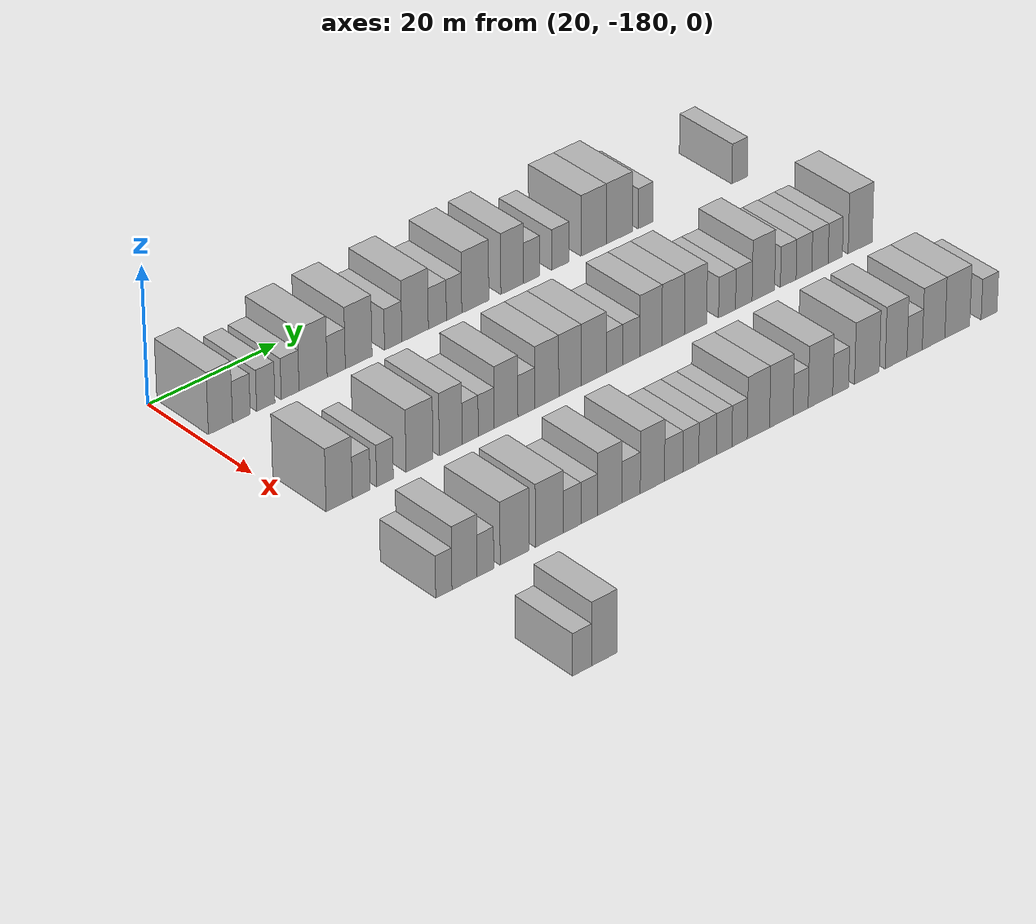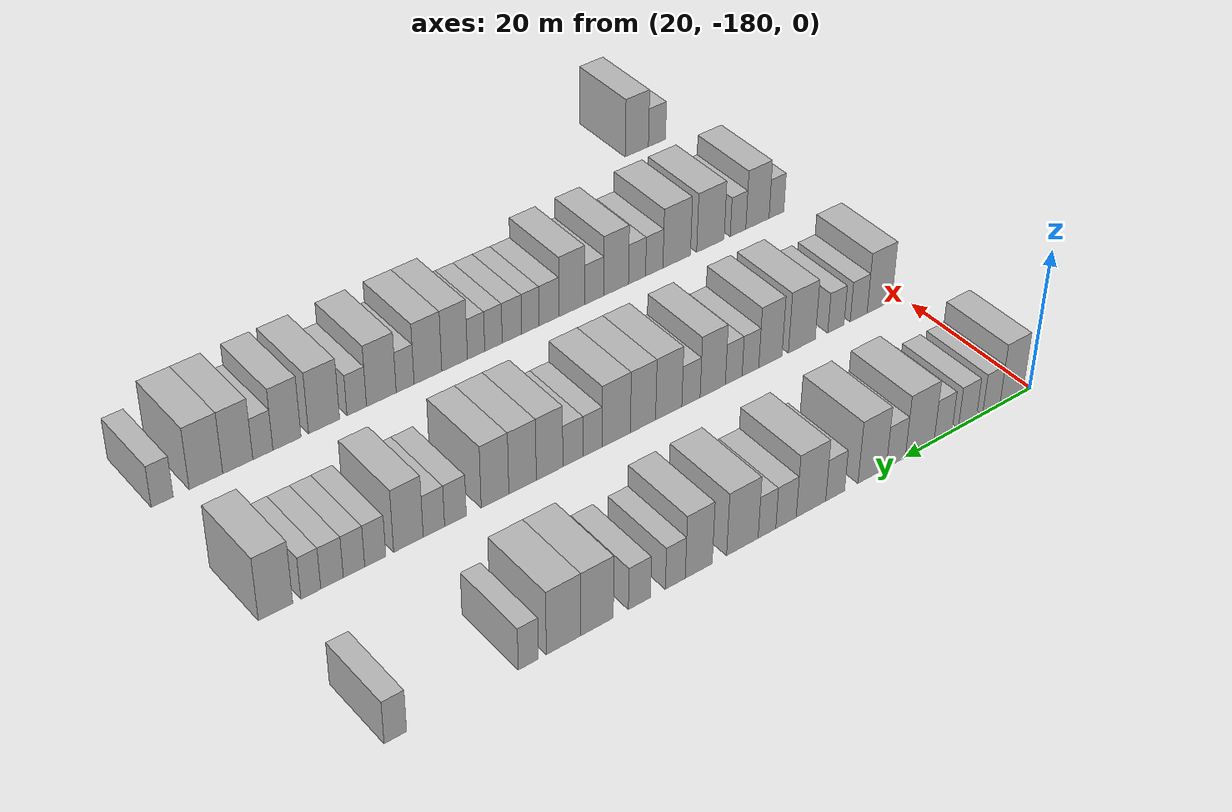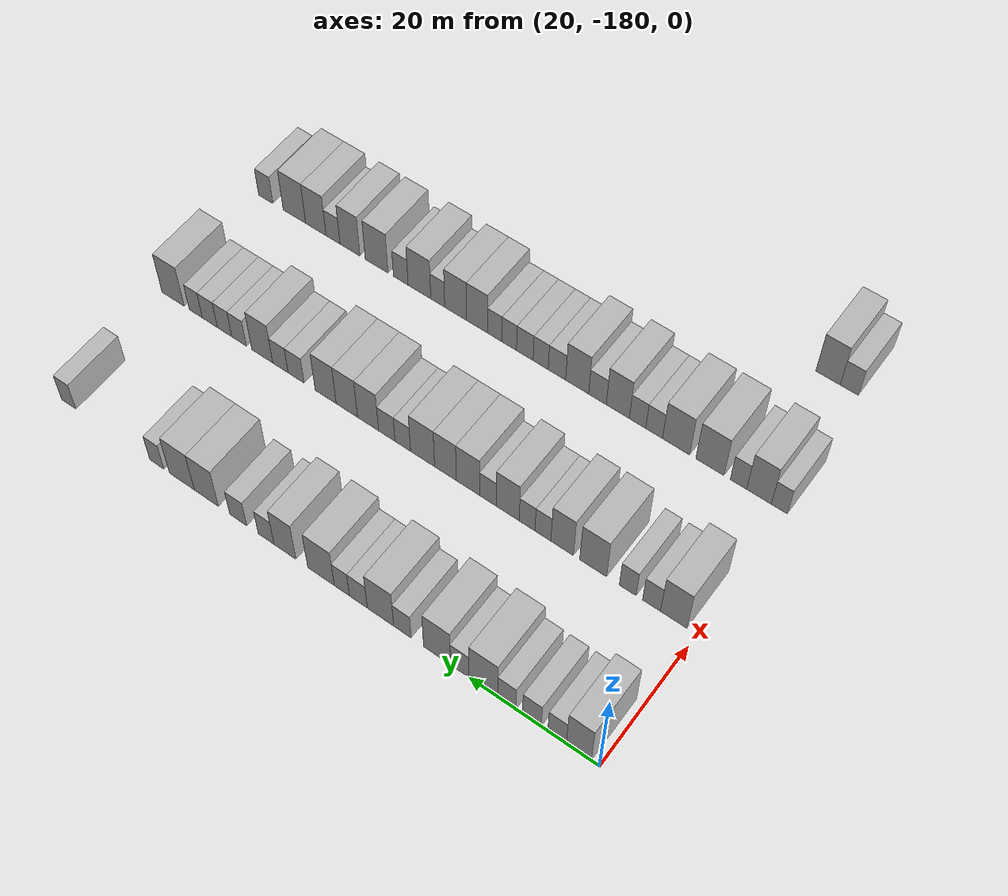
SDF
<sdf version="1.6">
 <world name="default">
  <model name="building_49">
   <static>1</static>
   <pose>25.0000 -176.8252 0 0.000000 0.000000 0.000000</pose>
   <link name="link">
    <pose>0 0 4.50 0 0 0</pose>
    <collision name="collision"><geometry><box><size>10.0000 3.7532 9.0000</size></box></geometry></collision>
    <visual name="visual">
     <cast_shadows>0</cast_shadows>
     <geometry><box><size>10.0000 3.7532 9.0000</size></box></geometry>
     <material>
      <script>
       <uri>model://HANNAS_wall/materials/scripts</uri>
       <uri>model://HANNAS_wall/materials/textures</uri>
       <name>vrc/HANNAS_wall</name>
      </script>
     </material>
    </visual>
   </link>
  </model>
  <model name="building_50">
   <static>1</static>
   <pose>25.0000 -173.5643 0 0.000000 0.000000 0.000000</pose>
   <link name="link">
    <pose>0 0 3.00 0 0 0</pose>
    <collision name="collision"><geometry><box><size>10.0000 2.7686 6.0000</size></box></geometry></collision>
    <visual name="visual">
     <cast_shadows>0</cast_shadows>
     <geometry><box><size>10.0000 2.7686 6.0000</size></box></geometry>
     <material>
      <script>
       <uri>model://HANNAS_wall/materials/scripts</uri>
       <uri>model://HANNAS_wall/materials/textures</uri>
       <name>vrc/HANNAS_wall</name>
      </script>
     </material>
    </visual>
   </link>
  </model>
  <model name="building_51">
   <static>1</static>
   <pose>25.0000 -169.7473 0 0.000000 0.000000 0.000000</pose>
   <link name="link">
    <pose>0 0 3.00 0 0 0</pose>
    <collision name="collision"><geometry><box><size>10.0000 2.8655 6.0000</size></box></geometry></collision>
    <visual name="visual">
     <cast_shadows>0</cast_shadows>
     <geometry><box><size>10.0000 2.8655 6.0000</size></box></geometry>
     <material>
      <script>
       <uri>model://HANNAS_wall/materials/scripts</uri>
       <uri>model://HANNAS_wall/materials/textures</uri>
       <name>vrc/HANNAS_wall</name>
      </script>
     </material>
    </visual>
   </link>
  </model>
  <model name="building_52">
   <static>1</static>
   <pose>25.0000 -165.9094 0 0.000000 0.000000 0.000000</pose>
   <link name="link">
    <pose>0 0 3.00 0 0 0</pose>
    <collision name="collision"><geometry><box><size>10.0000 2.8103 6.0000</size></box></geometry></collision>
    <visual name="visual">
     <cast_shadows>0</cast_shadows>
     <geometry><box><size>10.0000 2.8103 6.0000</size></box></geometry>
     <material>
      <script>
       <uri>model://HANNAS_wall/materials/scripts</uri>
       <uri>model://HANNAS_wall/materials/textures</uri>
       <name>vrc/HANNAS_wall</name>
      </script>
     </material>
    </visual>
   </link>
  </model>
  <model name="building_53">
   <static>1</static>
   <pose>25.0000 -162.2745 0 0.000000 0.000000 0.000000</pose>
   <link name="link">
    <pose>0 0 4.50 0 0 0</pose>
    <collision name="collision"><geometry><box><size>10.0000 4.4594 9.0000</size></box></geometry></collision>
    <visual name="visual">
     <cast_shadows>0</cast_shadows>
     <geometry><box><size>10.0000 4.4594 9.0000</size></box></geometry>
     <material>
      <script>
       <uri>model://HANNAS_wall/materials/scripts</uri>
       <uri>model://HANNAS_wall/materials/textures</uri>
       <name>vrc/HANNAS_wall</name>
      </script>
     </material>
    </visual>
   </link>
  </model>
  <model name="building_54">
   <static>1</static>
   <pose>25.0000 -158.5952 0 0.000000 0.000000 0.000000</pose>
   <link name="link">
    <pose>0 0 3.00 0 0 0</pose>
    <collision name="collision"><geometry><box><size>10.0000 2.8992 6.0000</size></box></geometry></collision>
    <visual name="visual">
     <cast_shadows>0</cast_shadows>
     <geometry><box><size>10.0000 2.8992 6.0000</size></box></geometry>
     <material>
      <script>
       <uri>model://HANNAS_wall/materials/scripts</uri>
       <uri>model://HANNAS_wall/materials/textures</uri>
       <name>vrc/HANNAS_wall</name>
      </script>
     </material>
    </visual>
   </link>
  </model>
  <model name="building_55">
   <static>1</static>
   <pose>25.0000 -155.0011 0 0.000000 0.000000 0.000000</pose>
   <link name="link">
    <pose>0 0 4.50 0 0 0</pose>
    <collision name="collision"><geometry><box><size>10.0000 4.2891 9.0000</size></box></geometry></collision>
    <visual name="visual">
     <cast_shadows>0</cast_shadows>
     <geometry><box><size>10.0000 4.2891 9.0000</size></box></geometry>
     <material>
      <script>
       <uri>model://HANNAS_wall/materials/scripts</uri>
       <uri>model://HANNAS_wall/materials/textures</uri>
       <name>vrc/HANNAS_wall</name>
      </script>
     </material>
    </visual>
   </link>
  </model>
  <model name="building_56">
   <static>1</static>
   <pose>25.0000 -149.4536 0 0.000000 0.000000 0.000000</pose>
   <link name="link">
    <pose>0 0 3.00 0 0 0</pose>
    <collision name="collision"><geometry><box><size>10.0000 2.8059 6.0000</size></box></geometry></collision>
    <visual name="visual">
     <cast_shadows>0</cast_shadows>
     <geometry><box><size>10.0000 2.8059 6.0000</size></box></geometry>
     <material>
      <script>
       <uri>model://HANNAS_wall/materials/scripts</uri>
       <uri>model://HANNAS_wall/materials/textures</uri>
       <name>vrc/HANNAS_wall</name>
      </script>
     </material>
    </visual>
   </link>
  </model>
  <model name="building_57">
   <static>1</static>
   <pose>25.0000 -145.8993 0 0.000000 0.000000 0.000000</pose>
   <link name="link">
    <pose>0 0 4.50 0 0 0</pose>
    <collision name="collision"><geometry><box><size>10.0000 4.3028 9.0000</size></box></geometry></collision>
    <visual name="visual">
     <cast_shadows>0</cast_shadows>
     <geometry><box><size>10.0000 4.3028 9.0000</size></box></geometry>
     <material>
      <script>
       <uri>model://HANNAS_wall/materials/scripts</uri>
       <uri>model://HANNAS_wall/materials/textures</uri>
       <name>vrc/HANNAS_wall</name>
      </script>
     </material>
    </visual>
   </link>
  </model>
  <model name="building_58">
   <static>1</static>
   <pose>25.0000 -142.2733 0 0.000000 0.000000 0.000000</pose>
   <link name="link">
    <pose>0 0 3.00 0 0 0</pose>
    <collision name="collision"><geometry><box><size>10.0000 2.9493 6.0000</size></box></geometry></collision>
    <visual name="visual">
     <cast_shadows>0</cast_shadows>
     <geometry><box><size>10.0000 2.9493 6.0000</size></box></geometry>
     <material>
      <script>
       <uri>model://HANNAS_wall/materials/scripts</uri>
       <uri>model://HANNAS_wall/materials/textures</uri>
       <name>vrc/HANNAS_wall</name>
      </script>
     </material>
    </visual>
   </link>
  </model>
  <model name="building_59">
   <static>1</static>
   <pose>25.0000 -139.5388 0 0.000000 0.000000 0.000000</pose>
   <link name="link">
    <pose>0 0 3.00 0 0 0</pose>
    <collision name="collision"><geometry><box><size>10.0000 2.5197 6.0000</size></box></geometry></collision>
    <visual name="visual">
     <cast_shadows>0</cast_shadows>
     <geometry><box><size>10.0000 2.5197 6.0000</size></box></geometry>
     <material>
      <script>
       <uri>model://HANNAS_wall/materials/scripts</uri>
       <uri>model://HANNAS_wall/materials/textures</uri>
       <name>vrc/HANNAS_wall</name>
      </script>
     </material>
    </visual>
   </link>
  </model>
  <model name="building_60">
   <static>1</static>
   <pose>25.0000 -136.0544 0 0.000000 0.000000 0.000000</pose>
   <link name="link">
    <pose>0 0 4.50 0 0 0</pose>
    <collision name="collision"><geometry><box><size>10.0000 4.4490 9.0000</size></box></geometry></collision>
    <visual name="visual">
     <cast_shadows>0</cast_shadows>
     <geometry><box><size>10.0000 4.4490 9.0000</size></box></geometry>
     <material>
      <script>
       <uri>model://HANNAS_wall/materials/scripts</uri>
       <uri>model://HANNAS_wall/materials/textures</uri>
       <name>vrc/HANNAS_wall</name>
      </script>
     </material>
    </visual>
   </link>
  </model>
  <model name="building_61">
   <static>1</static>
   <pose>25.0000 -129.9648 0 0.000000 0.000000 0.000000</pose>
   <link name="link">
    <pose>0 0 4.50 0 0 0</pose>
    <collision name="collision"><geometry><box><size>10.0000 3.7301 9.0000</size></box></geometry></collision>
    <visual name="visual">
     <cast_shadows>0</cast_shadows>
     <geometry><box><size>10.0000 3.7301 9.0000</size></box></geometry>
     <material>
      <script>
       <uri>model://HANNAS_wall/materials/scripts</uri>
       <uri>model://HANNAS_wall/materials/textures</uri>
       <name>vrc/HANNAS_wall</name>
      </script>
     </material>
    </visual>
   </link>
  </model>
  <model name="building_62">
   <static>1</static>
   <pose>25.0000 -126.7438 0 0.000000 0.000000 0.000000</pose>
   <link name="link">
    <pose>0 0 3.00 0 0 0</pose>
    <collision name="collision"><geometry><box><size>10.0000 2.7120 6.0000</size></box></geometry></collision>
    <visual name="visual">
     <cast_shadows>0</cast_shadows>
     <geometry><box><size>10.0000 2.7120 6.0000</size></box></geometry>
     <material>
      <script>
       <uri>model://HANNAS_wall/materials/scripts</uri>
       <uri>model://HANNAS_wall/materials/textures</uri>
       <name>vrc/HANNAS_wall</name>
      </script>
     </material>
    </visual>
   </link>
  </model>
  <model name="building_63">
   <static>1</static>
   <pose>25.0000 -121.9091 0 0.000000 0.000000 0.000000</pose>
   <link name="link">
    <pose>0 0 3.00 0 0 0</pose>
    <collision name="collision"><geometry><box><size>10.0000 2.9574 6.0000</size></box></geometry></collision>
    <visual name="visual">
     <cast_shadows>0</cast_shadows>
     <geometry><box><size>10.0000 2.9574 6.0000</size></box></geometry>
     <material>
      <script>
       <uri>model://HANNAS_wall/materials/scripts</uri>
       <uri>model://HANNAS_wall/materials/textures</uri>
       <name>vrc/HANNAS_wall</name>
      </script>
     </material>
    </visual>
   </link>
  </model>
  <model name="building_64">
   <static>1</static>
   <pose>25.0000 -116.3051 0 0.000000 0.000000 0.000000</pose>
   <link name="link">
    <pose>0 0 4.50 0 0 0</pose>
    <collision name="collision"><geometry><box><size>10.0000 4.2506 9.0000</size></box></geometry></collision>
    <visual name="visual">
     <cast_shadows>0</cast_shadows>
     <geometry><box><size>10.0000 4.2506 9.0000</size></box></geometry>
     <material>
      <script>
       <uri>model://HANNAS_wall/materials/scripts</uri>
       <uri>model://HANNAS_wall/materials/textures</uri>
       <name>vrc/HANNAS_wall</name>
      </script>
     </material>
    </visual>
   </link>
  </model>
  <model name="building_65">
   <static>1</static>
   <pose>25.0000 -111.9538 0 0.000000 0.000000 0.000000</pose>
   <link name="link">
    <pose>0 0 4.50 0 0 0</pose>
    <collision name="collision"><geometry><box><size>10.0000 4.4520 9.0000</size></box></geometry></collision>
    <visual name="visual">
     <cast_shadows>0</cast_shadows>
     <geometry><box><size>10.0000 4.4520 9.0000</size></box></geometry>
     <material>
      <script>
       <uri>model://HANNAS_wall/materials/scripts</uri>
       <uri>model://HANNAS_wall/materials/textures</uri>
       <name>vrc/HANNAS_wall</name>
      </script>
     </material>
    </visual>
   </link>
  </model>
  <model name="building_66">
   <static>1</static>
   <pose>25.0000 -107.4496 0 0.000000 0.000000 0.000000</pose>
   <link name="link">
    <pose>0 0 3.00 0 0 0</pose>
    <collision name="collision"><geometry><box><size>10.0000 2.5565 6.0000</size></box></geometry></collision>
    <visual name="visual">
     <cast_shadows>0</cast_shadows>
     <geometry><box><size>10.0000 2.5565 6.0000</size></box></geometry>
     <material>
      <script>
       <uri>model://HANNAS_wall/materials/scripts</uri>
       <uri>model://HANNAS_wall/materials/textures</uri>
       <name>vrc/HANNAS_wall</name>
      </script>
     </material>
    </visual>
   </link>
  </model>
  <model name="building_67">
   <static>1</static>
   <pose>25.0000 -91.1495 0 0.000000 0.000000 0.000000</pose>
   <link name="link">
    <pose>0 0 3.00 0 0 0</pose>
    <collision name="collision"><geometry><box><size>10.0000 2.6812 6.0000</size></box></geometry></collision>
    <visual name="visual">
     <cast_shadows>0</cast_shadows>
     <geometry><box><size>10.0000 2.6812 6.0000</size></box></geometry>
     <material>
      <script>
       <uri>model://HANNAS_wall/materials/scripts</uri>
       <uri>model://HANNAS_wall/materials/textures</uri>
       <name>vrc/HANNAS_wall</name>
      </script>
     </material>
    </visual>
   </link>
  </model>
  <model name="building_228">
   <static>1</static>
   <pose>47.0000 -176.4587 0 0.000000 0.000000 0.000000</pose>
   <link name="link">
    <pose>0 0 4.50 0 0 0</pose>
    <collision name="collision"><geometry><box><size>10.0000 4.0705 9.0000</size></box></geometry></collision>
    <visual name="visual">
     <cast_shadows>0</cast_shadows>
     <geometry><box><size>10.0000 4.0705 9.0000</size></box></geometry>
     <material>
      <script>
       <uri>model://HANNAS_wall/materials/scripts</uri>
       <uri>model://HANNAS_wall/materials/textures</uri>
       <name>vrc/HANNAS_wall</name>
      </script>
     </material>
    </visual>
   </link>
  </model>
  <model name="building_229">
   <static>1</static>
   <pose>47.0000 -173.0446 0 0.000000 0.000000 0.000000</pose>
   <link name="link">
    <pose>0 0 3.00 0 0 0</pose>
    <collision name="collision"><geometry><box><size>10.0000 2.7576 6.0000</size></box></geometry></collision>
    <visual name="visual">
     <cast_shadows>0</cast_shadows>
     <geometry><box><size>10.0000 2.7576 6.0000</size></box></geometry>
     <material>
      <script>
       <uri>model://HANNAS_wall/materials/scripts</uri>
       <uri>model://HANNAS_wall/materials/textures</uri>
       <name>vrc/HANNAS_wall</name>
      </script>
     </material>
    </visual>
   </link>
  </model>
  <model name="building_230">
   <static>1</static>
   <pose>47.0000 -169.3561 0 0.000000 0.000000 0.000000</pose>
   <link name="link">
    <pose>0 0 3.00 0 0 0</pose>
    <collision name="collision"><geometry><box><size>10.0000 2.6195 6.0000</size></box></geometry></collision>
    <visual name="visual">
     <cast_shadows>0</cast_shadows>
     <geometry><box><size>10.0000 2.6195 6.0000</size></box></geometry>
     <material>
      <script>
       <uri>model://HANNAS_wall/materials/scripts</uri>
       <uri>model://HANNAS_wall/materials/textures</uri>
       <name>vrc/HANNAS_wall</name>
      </script>
     </material>
    </visual>
   </link>
  </model>
  <model name="building_231">
   <static>1</static>
   <pose>47.0000 -163.9204 0 0.000000 0.000000 0.000000</pose>
   <link name="link">
    <pose>0 0 4.50 0 0 0</pose>
    <collision name="collision"><geometry><box><size>10.0000 4.2517 9.0000</size></box></geometry></collision>
    <visual name="visual">
     <cast_shadows>0</cast_shadows>
     <geometry><box><size>10.0000 4.2517 9.0000</size></box></geometry>
     <material>
      <script>
       <uri>model://HANNAS_wall/materials/scripts</uri>
       <uri>model://HANNAS_wall/materials/textures</uri>
       <name>vrc/HANNAS_wall</name>
      </script>
     </material>
    </visual>
   </link>
  </model>
  <model name="building_232">
   <static>1</static>
   <pose>47.0000 -158.9836 0 0.000000 0.000000 0.000000</pose>
   <link name="link">
    <pose>0 0 4.50 0 0 0</pose>
    <collision name="collision"><geometry><box><size>10.0000 3.6220 9.0000</size></box></geometry></collision>
    <visual name="visual">
     <cast_shadows>0</cast_shadows>
     <geometry><box><size>10.0000 3.6220 9.0000</size></box></geometry>
     <material>
      <script>
       <uri>model://HANNAS_wall/materials/scripts</uri>
       <uri>model://HANNAS_wall/materials/textures</uri>
       <name>vrc/HANNAS_wall</name>
      </script>
     </material>
    </visual>
   </link>
  </model>
  <model name="building_233">
   <static>1</static>
   <pose>47.0000 -155.8892 0 0.000000 0.000000 0.000000</pose>
   <link name="link">
    <pose>0 0 3.00 0 0 0</pose>
    <collision name="collision"><geometry><box><size>10.0000 2.5667 6.0000</size></box></geometry></collision>
    <visual name="visual">
     <cast_shadows>0</cast_shadows>
     <geometry><box><size>10.0000 2.5667 6.0000</size></box></geometry>
     <material>
      <script>
       <uri>model://HANNAS_wall/materials/scripts</uri>
       <uri>model://HANNAS_wall/materials/textures</uri>
       <name>vrc/HANNAS_wall</name>
      </script>
     </material>
    </visual>
   </link>
  </model>
  <model name="building_234">
   <static>1</static>
   <pose>47.0000 -153.3253 0 0.000000 0.000000 0.000000</pose>
   <link name="link">
    <pose>0 0 3.00 0 0 0</pose>
    <collision name="collision"><geometry><box><size>10.0000 2.5609 6.0000</size></box></geometry></collision>
    <visual name="visual">
     <cast_shadows>0</cast_shadows>
     <geometry><box><size>10.0000 2.5609 6.0000</size></box></geometry>
     <material>
      <script>
       <uri>model://HANNAS_wall/materials/scripts</uri>
       <uri>model://HANNAS_wall/materials/textures</uri>
       <name>vrc/HANNAS_wall</name>
      </script>
     </material>
    </visual>
   </link>
  </model>
  <model name="building_235">
   <static>1</static>
   <pose>47.0000 -150.1393 0 0.000000 0.000000 0.000000</pose>
   <link name="link">
    <pose>0 0 4.50 0 0 0</pose>
    <collision name="collision"><geometry><box><size>10.0000 3.8112 9.0000</size></box></geometry></collision>
    <visual name="visual">
     <cast_shadows>0</cast_shadows>
     <geometry><box><size>10.0000 3.8112 9.0000</size></box></geometry>
     <material>
      <script>
       <uri>model://HANNAS_wall/materials/scripts</uri>
       <uri>model://HANNAS_wall/materials/textures</uri>
       <name>vrc/HANNAS_wall</name>
      </script>
     </material>
    </visual>
   </link>
  </model>
  <model name="building_236">
   <static>1</static>
   <pose>47.0000 -146.8657 0 0.000000 0.000000 0.000000</pose>
   <link name="link">
    <pose>0 0 3.00 0 0 0</pose>
    <collision name="collision"><geometry><box><size>10.0000 2.7361 6.0000</size></box></geometry></collision>
    <visual name="visual">
     <cast_shadows>0</cast_shadows>
     <geometry><box><size>10.0000 2.7361 6.0000</size></box></geometry>
     <material>
      <script>
       <uri>model://HANNAS_wall/materials/scripts</uri>
       <uri>model://HANNAS_wall/materials/textures</uri>
       <name>vrc/HANNAS_wall</name>
      </script>
     </material>
    </visual>
   </link>
  </model>
  <model name="building_237">
   <static>1</static>
   <pose>47.0000 -143.5583 0 0.000000 0.000000 0.000000</pose>
   <link name="link">
    <pose>0 0 4.50 0 0 0</pose>
    <collision name="collision"><geometry><box><size>10.0000 3.8787 9.0000</size></box></geometry></collision>
    <visual name="visual">
     <cast_shadows>0</cast_shadows>
     <geometry><box><size>10.0000 3.8787 9.0000</size></box></geometry>
     <material>
      <script>
       <uri>model://HANNAS_wall/materials/scripts</uri>
       <uri>model://HANNAS_wall/materials/textures</uri>
       <name>vrc/HANNAS_wall</name>
      </script>
     </material>
    </visual>
   </link>
  </model>
  <model name="building_238">
   <static>1</static>
   <pose>47.0000 -139.7811 0 0.000000 0.000000 0.000000</pose>
   <link name="link">
    <pose>0 0 4.50 0 0 0</pose>
    <collision name="collision"><geometry><box><size>10.0000 3.6757 9.0000</size></box></geometry></collision>
    <visual name="visual">
     <cast_shadows>0</cast_shadows>
     <geometry><box><size>10.0000 3.6757 9.0000</size></box></geometry>
     <material>
      <script>
       <uri>model://HANNAS_wall/materials/scripts</uri>
       <uri>model://HANNAS_wall/materials/textures</uri>
       <name>vrc/HANNAS_wall</name>
      </script>
     </material>
    </visual>
   </link>
  </model>
  <model name="building_239">
   <static>1</static>
   <pose>47.0000 -135.8971 0 0.000000 0.000000 0.000000</pose>
   <link name="link">
    <pose>0 0 4.50 0 0 0</pose>
    <collision name="collision"><geometry><box><size>10.0000 4.0923 9.0000</size></box></geometry></collision>
    <visual name="visual">
     <cast_shadows>0</cast_shadows>
     <geometry><box><size>10.0000 4.0923 9.0000</size></box></geometry>
     <material>
      <script>
       <uri>model://HANNAS_wall/materials/scripts</uri>
       <uri>model://HANNAS_wall/materials/textures</uri>
       <name>vrc/HANNAS_wall</name>
      </script>
     </material>
    </visual>
   </link>
  </model>
  <model name="building_240">
   <static>1</static>
   <pose>47.0000 -132.5113 0 0.000000 0.000000 0.000000</pose>
   <link name="link">
    <pose>0 0 3.00 0 0 0</pose>
    <collision name="collision"><geometry><box><size>10.0000 2.6795 6.0000</size></box></geometry></collision>
    <visual name="visual">
     <cast_shadows>0</cast_shadows>
     <geometry><box><size>10.0000 2.6795 6.0000</size></box></geometry>
     <material>
      <script>
       <uri>model://HANNAS_wall/materials/scripts</uri>
       <uri>model://HANNAS_wall/materials/textures</uri>
       <name>vrc/HANNAS_wall</name>
      </script>
     </material>
    </visual>
   </link>
  </model>
  <model name="building_241">
   <static>1</static>
   <pose>47.0000 -129.7492 0 0.000000 0.000000 0.000000</pose>
   <link name="link">
    <pose>0 0 3.00 0 0 0</pose>
    <collision name="collision"><geometry><box><size>10.0000 2.8446 6.0000</size></box></geometry></collision>
    <visual name="visual">
     <cast_shadows>0</cast_shadows>
     <geometry><box><size>10.0000 2.8446 6.0000</size></box></geometry>
     <material>
      <script>
       <uri>model://HANNAS_wall/materials/scripts</uri>
       <uri>model://HANNAS_wall/materials/textures</uri>
       <name>vrc/HANNAS_wall</name>
      </script>
     </material>
    </visual>
   </link>
  </model>
  <model name="building_242">
   <static>1</static>
   <pose>47.0000 -126.4834 0 0.000000 0.000000 0.000000</pose>
   <link name="link">
    <pose>0 0 4.50 0 0 0</pose>
    <collision name="collision"><geometry><box><size>10.0000 3.6870 9.0000</size></box></geometry></collision>
    <visual name="visual">
     <cast_shadows>0</cast_shadows>
     <geometry><box><size>10.0000 3.6870 9.0000</size></box></geometry>
     <material>
      <script>
       <uri>model://HANNAS_wall/materials/scripts</uri>
       <uri>model://HANNAS_wall/materials/textures</uri>
       <name>vrc/HANNAS_wall</name>
      </script>
     </material>
    </visual>
   </link>
  </model>
  <model name="building_243">
   <static>1</static>
   <pose>47.0000 -122.7563 0 0.000000 0.000000 0.000000</pose>
   <link name="link">
    <pose>0 0 4.50 0 0 0</pose>
    <collision name="collision"><geometry><box><size>10.0000 3.7672 9.0000</size></box></geometry></collision>
    <visual name="visual">
     <cast_shadows>0</cast_shadows>
     <geometry><box><size>10.0000 3.7672 9.0000</size></box></geometry>
     <material>
      <script>
       <uri>model://HANNAS_wall/materials/scripts</uri>
       <uri>model://HANNAS_wall/materials/textures</uri>
       <name>vrc/HANNAS_wall</name>
      </script>
     </material>
    </visual>
   </link>
  </model>
  <model name="building_244">
   <static>1</static>
   <pose>47.0000 -119.0003 0 0.000000 0.000000 0.000000</pose>
   <link name="link">
    <pose>0 0 4.50 0 0 0</pose>
    <collision name="collision"><geometry><box><size>10.0000 3.7448 9.0000</size></box></geometry></collision>
    <visual name="visual">
     <cast_shadows>0</cast_shadows>
     <geometry><box><size>10.0000 3.7448 9.0000</size></box></geometry>
     <material>
      <script>
       <uri>model://HANNAS_wall/materials/scripts</uri>
       <uri>model://HANNAS_wall/materials/textures</uri>
       <name>vrc/HANNAS_wall</name>
      </script>
     </material>
    </visual>
   </link>
  </model>
  <model name="building_245">
   <static>1</static>
   <pose>47.0000 -113.6868 0 0.000000 0.000000 0.000000</pose>
   <link name="link">
    <pose>0 0 3.00 0 0 0</pose>
    <collision name="collision"><geometry><box><size>10.0000 2.8822 6.0000</size></box></geometry></collision>
    <visual name="visual">
     <cast_shadows>0</cast_shadows>
     <geometry><box><size>10.0000 2.8822 6.0000</size></box></geometry>
     <material>
      <script>
       <uri>model://HANNAS_wall/materials/scripts</uri>
       <uri>model://HANNAS_wall/materials/textures</uri>
       <name>vrc/HANNAS_wall</name>
      </script>
     </material>
    </visual>
   </link>
  </model>
  <model name="building_246">
   <static>1</static>
   <pose>47.0000 -110.8416 0 0.000000 0.000000 0.000000</pose>
   <link name="link">
    <pose>0 0 3.00 0 0 0</pose>
    <collision name="collision"><geometry><box><size>10.0000 2.8083 6.0000</size></box></geometry></collision>
    <visual name="visual">
     <cast_shadows>0</cast_shadows>
     <geometry><box><size>10.0000 2.8083 6.0000</size></box></geometry>
     <material>
      <script>
       <uri>model://HANNAS_wall/materials/scripts</uri>
       <uri>model://HANNAS_wall/materials/textures</uri>
       <name>vrc/HANNAS_wall</name>
      </script>
     </material>
    </visual>
   </link>
  </model>
  <model name="building_247">
   <static>1</static>
   <pose>47.0000 -107.5144 0 0.000000 0.000000 0.000000</pose>
   <link name="link">
    <pose>0 0 4.50 0 0 0</pose>
    <collision name="collision"><geometry><box><size>10.0000 3.8461 9.0000</size></box></geometry></collision>
    <visual name="visual">
     <cast_shadows>0</cast_shadows>
     <geometry><box><size>10.0000 3.8461 9.0000</size></box></geometry>
     <material>
      <script>
       <uri>model://HANNAS_wall/materials/scripts</uri>
       <uri>model://HANNAS_wall/materials/textures</uri>
       <name>vrc/HANNAS_wall</name>
      </script>
     </material>
    </visual>
   </link>
  </model>
  <model name="building_248">
   <static>1</static>
   <pose>47.0000 -103.2416 0 0.000000 0.000000 0.000000</pose>
   <link name="link">
    <pose>0 0 3.00 0 0 0</pose>
    <collision name="collision"><geometry><box><size>10.0000 2.6995 6.0000</size></box></geometry></collision>
    <visual name="visual">
     <cast_shadows>0</cast_shadows>
     <geometry><box><size>10.0000 2.6995 6.0000</size></box></geometry>
     <material>
      <script>
       <uri>model://HANNAS_wall/materials/scripts</uri>
       <uri>model://HANNAS_wall/materials/textures</uri>
       <name>vrc/HANNAS_wall</name>
      </script>
     </material>
    </visual>
   </link>
  </model>
  <model name="building_249">
   <static>1</static>
   <pose>47.0000 -100.5383 0 0.000000 0.000000 0.000000</pose>
   <link name="link">
    <pose>0 0 3.00 0 0 0</pose>
    <collision name="collision"><geometry><box><size>10.0000 2.7071 6.0000</size></box></geometry></collision>
    <visual name="visual">
     <cast_shadows>0</cast_shadows>
     <geometry><box><size>10.0000 2.7071 6.0000</size></box></geometry>
     <material>
      <script>
       <uri>model://HANNAS_wall/materials/scripts</uri>
       <uri>model://HANNAS_wall/materials/textures</uri>
       <name>vrc/HANNAS_wall</name>
      </script>
     </material>
    </visual>
   </link>
  </model>
  <model name="building_250">
   <static>1</static>
   <pose>47.0000 -97.7692 0 0.000000 0.000000 0.000000</pose>
   <link name="link">
    <pose>0 0 3.00 0 0 0</pose>
    <collision name="collision"><geometry><box><size>10.0000 2.8310 6.0000</size></box></geometry></collision>
    <visual name="visual">
     <cast_shadows>0</cast_shadows>
     <geometry><box><size>10.0000 2.8310 6.0000</size></box></geometry>
     <material>
      <script>
       <uri>model://HANNAS_wall/materials/scripts</uri>
       <uri>model://HANNAS_wall/materials/textures</uri>
       <name>vrc/HANNAS_wall</name>
      </script>
     </material>
    </visual>
   </link>
  </model>
  <model name="building_251">
   <static>1</static>
   <pose>47.0000 -95.1175 0 0.000000 0.000000 0.000000</pose>
   <link name="link">
    <pose>0 0 3.00 0 0 0</pose>
    <collision name="collision"><geometry><box><size>10.0000 2.4724 6.0000</size></box></geometry></collision>
    <visual name="visual">
     <cast_shadows>0</cast_shadows>
     <geometry><box><size>10.0000 2.4724 6.0000</size></box></geometry>
     <material>
      <script>
       <uri>model://HANNAS_wall/materials/scripts</uri>
       <uri>model://HANNAS_wall/materials/textures</uri>
       <name>vrc/HANNAS_wall</name>
      </script>
     </material>
    </visual>
   </link>
  </model>
  <model name="building_252">
   <static>1</static>
   <pose>47.0000 -90.7767 0 0.000000 0.000000 0.000000</pose>
   <link name="link">
    <pose>0 0 4.50 0 0 0</pose>
    <collision name="collision"><geometry><box><size>10.0000 4.2091 9.0000</size></box></geometry></collision>
    <visual name="visual">
     <cast_shadows>0</cast_shadows>
     <geometry><box><size>10.0000 4.2091 9.0000</size></box></geometry>
     <material>
      <script>
       <uri>model://HANNAS_wall/materials/scripts</uri>
       <uri>model://HANNAS_wall/materials/textures</uri>
       <name>vrc/HANNAS_wall</name>
      </script>
     </material>
    </visual>
   </link>
  </model>
  <model name="building_423">
   <static>1</static>
   <pose>69.0000 -178.9523 0 0.000000 0.000000 0.000000</pose>
   <link name="link">
    <pose>0 0 3.00 0 0 0</pose>
    <collision name="collision"><geometry><box><size>10.0000 2.4905 6.0000</size></box></geometry></collision>
    <visual name="visual">
     <cast_shadows>0</cast_shadows>
     <geometry><box><size>10.0000 2.4905 6.0000</size></box></geometry>
     <material>
      <script>
       <uri>model://HANNAS_wall/materials/scripts</uri>
       <uri>model://HANNAS_wall/materials/textures</uri>
       <name>vrc/HANNAS_wall</name>
      </script>
     </material>
    </visual>
   </link>
  </model>
  <model name="building_424">
   <static>1</static>
   <pose>69.0000 -175.7659 0 0.000000 0.000000 0.000000</pose>
   <link name="link">
    <pose>0 0 4.50 0 0 0</pose>
    <collision name="collision"><geometry><box><size>10.0000 3.8822 9.0000</size></box></geometry></collision>
    <visual name="visual">
     <cast_shadows>0</cast_shadows>
     <geometry><box><size>10.0000 3.8822 9.0000</size></box></geometry>
     <material>
      <script>
       <uri>model://HANNAS_wall/materials/scripts</uri>
       <uri>model://HANNAS_wall/materials/textures</uri>
       <name>vrc/HANNAS_wall</name>
      </script>
     </material>
    </visual>
   </link>
  </model>
  <model name="building_425">
   <static>1</static>
   <pose>69.0000 -172.5363 0 0.000000 0.000000 0.000000</pose>
   <link name="link">
    <pose>0 0 3.00 0 0 0</pose>
    <collision name="collision"><geometry><box><size>10.0000 2.5769 6.0000</size></box></geometry></collision>
    <visual name="visual">
     <cast_shadows>0</cast_shadows>
     <geometry><box><size>10.0000 2.5769 6.0000</size></box></geometry>
     <material>
      <script>
       <uri>model://HANNAS_wall/materials/scripts</uri>
       <uri>model://HANNAS_wall/materials/textures</uri>
       <name>vrc/HANNAS_wall</name>
      </script>
     </material>
    </visual>
   </link>
  </model>
  <model name="building_426">
   <static>1</static>
   <pose>69.0000 -168.0023 0 0.000000 0.000000 0.000000</pose>
   <link name="link">
    <pose>0 0 4.50 0 0 0</pose>
    <collision name="collision"><geometry><box><size>10.0000 4.4912 9.0000</size></box></geometry></collision>
    <visual name="visual">
     <cast_shadows>0</cast_shadows>
     <geometry><box><size>10.0000 4.4912 9.0000</size></box></geometry>
     <material>
      <script>
       <uri>model://HANNAS_wall/materials/scripts</uri>
       <uri>model://HANNAS_wall/materials/textures</uri>
       <name>vrc/HANNAS_wall</name>
      </script>
     </material>
    </visual>
   </link>
  </model>
  <model name="building_427">
   <static>1</static>
   <pose>69.0000 -162.5492 0 0.000000 0.000000 0.000000</pose>
   <link name="link">
    <pose>0 0 4.50 0 0 0</pose>
    <collision name="collision"><geometry><box><size>10.0000 4.4151 9.0000</size></box></geometry></collision>
    <visual name="visual">
     <cast_shadows>0</cast_shadows>
     <geometry><box><size>10.0000 4.4151 9.0000</size></box></geometry>
     <material>
      <script>
       <uri>model://HANNAS_wall/materials/scripts</uri>
       <uri>model://HANNAS_wall/materials/textures</uri>
       <name>vrc/HANNAS_wall</name>
      </script>
     </material>
    </visual>
   </link>
  </model>
  <model name="building_428">
   <static>1</static>
   <pose>69.0000 -158.9685 0 0.000000 0.000000 0.000000</pose>
   <link name="link">
    <pose>0 0 3.00 0 0 0</pose>
    <collision name="collision"><geometry><box><size>10.0000 2.7462 6.0000</size></box></geometry></collision>
    <visual name="visual">
     <cast_shadows>0</cast_shadows>
     <geometry><box><size>10.0000 2.7462 6.0000</size></box></geometry>
     <material>
      <script>
       <uri>model://HANNAS_wall/materials/scripts</uri>
       <uri>model://HANNAS_wall/materials/textures</uri>
       <name>vrc/HANNAS_wall</name>
      </script>
     </material>
    </visual>
   </link>
  </model>
  <model name="building_429">
   <static>1</static>
   <pose>69.0000 -156.2530 0 0.000000 0.000000 0.000000</pose>
   <link name="link">
    <pose>0 0 3.00 0 0 0</pose>
    <collision name="collision"><geometry><box><size>10.0000 2.6848 6.0000</size></box></geometry></collision>
    <visual name="visual">
     <cast_shadows>0</cast_shadows>
     <geometry><box><size>10.0000 2.6848 6.0000</size></box></geometry>
     <material>
      <script>
       <uri>model://HANNAS_wall/materials/scripts</uri>
       <uri>model://HANNAS_wall/materials/textures</uri>
       <name>vrc/HANNAS_wall</name>
      </script>
     </material>
    </visual>
   </link>
  </model>
  <model name="building_430">
   <static>1</static>
   <pose>69.0000 -152.9836 0 0.000000 0.000000 0.000000</pose>
   <link name="link">
    <pose>0 0 4.50 0 0 0</pose>
    <collision name="collision"><geometry><box><size>10.0000 3.8540 9.0000</size></box></geometry></collision>
    <visual name="visual">
     <cast_shadows>0</cast_shadows>
     <geometry><box><size>10.0000 3.8540 9.0000</size></box></geometry>
     <material>
      <script>
       <uri>model://HANNAS_wall/materials/scripts</uri>
       <uri>model://HANNAS_wall/materials/textures</uri>
       <name>vrc/HANNAS_wall</name>
      </script>
     </material>
    </visual>
   </link>
  </model>
  <model name="building_431">
   <static>1</static>
   <pose>69.0000 -149.5840 0 0.000000 0.000000 0.000000</pose>
   <link name="link">
    <pose>0 0 3.00 0 0 0</pose>
    <collision name="collision"><geometry><box><size>10.0000 2.9451 6.0000</size></box></geometry></collision>
    <visual name="visual">
     <cast_shadows>0</cast_shadows>
     <geometry><box><size>10.0000 2.9451 6.0000</size></box></geometry>
     <material>
      <script>
       <uri>model://HANNAS_wall/materials/scripts</uri>
       <uri>model://HANNAS_wall/materials/textures</uri>
       <name>vrc/HANNAS_wall</name>
      </script>
     </material>
    </visual>
   </link>
  </model>
  <model name="building_432">
   <static>1</static>
   <pose>69.0000 -146.1603 0 0.000000 0.000000 0.000000</pose>
   <link name="link">
    <pose>0 0 4.50 0 0 0</pose>
    <collision name="collision"><geometry><box><size>10.0000 3.9023 9.0000</size></box></geometry></collision>
    <visual name="visual">
     <cast_shadows>0</cast_shadows>
     <geometry><box><size>10.0000 3.9023 9.0000</size></box></geometry>
     <material>
      <script>
       <uri>model://HANNAS_wall/materials/scripts</uri>
       <uri>model://HANNAS_wall/materials/textures</uri>
       <name>vrc/HANNAS_wall</name>
      </script>
     </material>
    </visual>
   </link>
  </model>
  <model name="building_433">
   <static>1</static>
   <pose>69.0000 -142.7282 0 0.000000 0.000000 0.000000</pose>
   <link name="link">
    <pose>0 0 3.00 0 0 0</pose>
    <collision name="collision"><geometry><box><size>10.0000 2.9617 6.0000</size></box></geometry></collision>
    <visual name="visual">
     <cast_shadows>0</cast_shadows>
     <geometry><box><size>10.0000 2.9617 6.0000</size></box></geometry>
     <material>
      <script>
       <uri>model://HANNAS_wall/materials/scripts</uri>
       <uri>model://HANNAS_wall/materials/textures</uri>
       <name>vrc/HANNAS_wall</name>
      </script>
     </material>
    </visual>
   </link>
  </model>
  <model name="building_434">
   <static>1</static>
   <pose>69.0000 -139.9505 0 0.000000 0.000000 0.000000</pose>
   <link name="link">
    <pose>0 0 3.00 0 0 0</pose>
    <collision name="collision"><geometry><box><size>10.0000 2.5938 6.0000</size></box></geometry></collision>
    <visual name="visual">
     <cast_shadows>0</cast_shadows>
     <geometry><box><size>10.0000 2.5938 6.0000</size></box></geometry>
     <material>
      <script>
       <uri>model://HANNAS_wall/materials/scripts</uri>
       <uri>model://HANNAS_wall/materials/textures</uri>
       <name>vrc/HANNAS_wall</name>
      </script>
     </material>
    </visual>
   </link>
  </model>
  <model name="building_435">
   <static>1</static>
   <pose>69.0000 -137.2169 0 0.000000 0.000000 0.000000</pose>
   <link name="link">
    <pose>0 0 3.00 0 0 0</pose>
    <collision name="collision"><geometry><box><size>10.0000 2.8733 6.0000</size></box></geometry></collision>
    <visual name="visual">
     <cast_shadows>0</cast_shadows>
     <geometry><box><size>10.0000 2.8733 6.0000</size></box></geometry>
     <material>
      <script>
       <uri>model://HANNAS_wall/materials/scripts</uri>
       <uri>model://HANNAS_wall/materials/textures</uri>
       <name>vrc/HANNAS_wall</name>
      </script>
     </material>
    </visual>
   </link>
  </model>
  <model name="building_436">
   <static>1</static>
   <pose>69.0000 -134.5002 0 0.000000 0.000000 0.000000</pose>
   <link name="link">
    <pose>0 0 3.00 0 0 0</pose>
    <collision name="collision"><geometry><box><size>10.0000 2.5601 6.0000</size></box></geometry></collision>
    <visual name="visual">
     <cast_shadows>0</cast_shadows>
     <geometry><box><size>10.0000 2.5601 6.0000</size></box></geometry>
     <material>
      <script>
       <uri>model://HANNAS_wall/materials/scripts</uri>
       <uri>model://HANNAS_wall/materials/textures</uri>
       <name>vrc/HANNAS_wall</name>
      </script>
     </material>
    </visual>
   </link>
  </model>
  <model name="building_437">
   <static>1</static>
   <pose>69.0000 -131.9668 0 0.000000 0.000000 0.000000</pose>
   <link name="link">
    <pose>0 0 3.00 0 0 0</pose>
    <collision name="collision"><geometry><box><size>10.0000 2.5067 6.0000</size></box></geometry></collision>
    <visual name="visual">
     <cast_shadows>0</cast_shadows>
     <geometry><box><size>10.0000 2.5067 6.0000</size></box></geometry>
     <material>
      <script>
       <uri>model://HANNAS_wall/materials/scripts</uri>
       <uri>model://HANNAS_wall/materials/textures</uri>
       <name>vrc/HANNAS_wall</name>
      </script>
     </material>
    </visual>
   </link>
  </model>
  <model name="building_438">
   <static>1</static>
   <pose>69.0000 -128.8723 0 0.000000 0.000000 0.000000</pose>
   <link name="link">
    <pose>0 0 4.50 0 0 0</pose>
    <collision name="collision"><geometry><box><size>10.0000 3.6824 9.0000</size></box></geometry></collision>
    <visual name="visual">
     <cast_shadows>0</cast_shadows>
     <geometry><box><size>10.0000 3.6824 9.0000</size></box></geometry>
     <material>
      <script>
       <uri>model://HANNAS_wall/materials/scripts</uri>
       <uri>model://HANNAS_wall/materials/textures</uri>
       <name>vrc/HANNAS_wall</name>
      </script>
     </material>
    </visual>
   </link>
  </model>
  <model name="building_439">
   <static>1</static>
   <pose>69.0000 -125.0687 0 0.000000 0.000000 0.000000</pose>
   <link name="link">
    <pose>0 0 4.50 0 0 0</pose>
    <collision name="collision"><geometry><box><size>10.0000 3.9247 9.0000</size></box></geometry></collision>
    <visual name="visual">
     <cast_shadows>0</cast_shadows>
     <geometry><box><size>10.0000 3.9247 9.0000</size></box></geometry>
     <material>
      <script>
       <uri>model://HANNAS_wall/materials/scripts</uri>
       <uri>model://HANNAS_wall/materials/textures</uri>
       <name>vrc/HANNAS_wall</name>
      </script>
     </material>
    </visual>
   </link>
  </model>
  <model name="building_440">
   <static>1</static>
   <pose>69.0000 -121.8514 0 0.000000 0.000000 0.000000</pose>
   <link name="link">
    <pose>0 0 3.00 0 0 0</pose>
    <collision name="collision"><geometry><box><size>10.0000 2.5101 6.0000</size></box></geometry></collision>
    <visual name="visual">
     <cast_shadows>0</cast_shadows>
     <geometry><box><size>10.0000 2.5101 6.0000</size></box></geometry>
     <material>
      <script>
       <uri>model://HANNAS_wall/materials/scripts</uri>
       <uri>model://HANNAS_wall/materials/textures</uri>
       <name>vrc/HANNAS_wall</name>
      </script>
     </material>
    </visual>
   </link>
  </model>
  <model name="building_441">
   <static>1</static>
   <pose>69.0000 -118.5375 0 0.000000 0.000000 0.000000</pose>
   <link name="link">
    <pose>0 0 4.50 0 0 0</pose>
    <collision name="collision"><geometry><box><size>10.0000 4.1176 9.0000</size></box></geometry></collision>
    <visual name="visual">
     <cast_shadows>0</cast_shadows>
     <geometry><box><size>10.0000 4.1176 9.0000</size></box></geometry>
     <material>
      <script>
       <uri>model://HANNAS_wall/materials/scripts</uri>
       <uri>model://HANNAS_wall/materials/textures</uri>
       <name>vrc/HANNAS_wall</name>
      </script>
     </material>
    </visual>
   </link>
  </model>
  <model name="building_442">
   <static>1</static>
   <pose>69.0000 -115.1402 0 0.000000 0.000000 0.000000</pose>
   <link name="link">
    <pose>0 0 3.00 0 0 0</pose>
    <collision name="collision"><geometry><box><size>10.0000 2.6769 6.0000</size></box></geometry></collision>
    <visual name="visual">
     <cast_shadows>0</cast_shadows>
     <geometry><box><size>10.0000 2.6769 6.0000</size></box></geometry>
     <material>
      <script>
       <uri>model://HANNAS_wall/materials/scripts</uri>
       <uri>model://HANNAS_wall/materials/textures</uri>
       <name>vrc/HANNAS_wall</name>
      </script>
     </material>
    </visual>
   </link>
  </model>
  <model name="building_443">
   <static>1</static>
   <pose>69.0000 -110.7036 0 0.000000 0.000000 0.000000</pose>
   <link name="link">
    <pose>0 0 4.50 0 0 0</pose>
    <collision name="collision"><geometry><box><size>10.0000 4.1963 9.0000</size></box></geometry></collision>
    <visual name="visual">
     <cast_shadows>0</cast_shadows>
     <geometry><box><size>10.0000 4.1963 9.0000</size></box></geometry>
     <material>
      <script>
       <uri>model://HANNAS_wall/materials/scripts</uri>
       <uri>model://HANNAS_wall/materials/textures</uri>
       <name>vrc/HANNAS_wall</name>
      </script>
     </material>
    </visual>
   </link>
  </model>
  <model name="building_444">
   <static>1</static>
   <pose>69.0000 -105.7430 0 0.000000 0.000000 0.000000</pose>
   <link name="link">
    <pose>0 0 4.50 0 0 0</pose>
    <collision name="collision"><geometry><box><size>10.0000 3.7248 9.0000</size></box></geometry></collision>
    <visual name="visual">
     <cast_shadows>0</cast_shadows>
     <geometry><box><size>10.0000 3.7248 9.0000</size></box></geometry>
     <material>
      <script>
       <uri>model://HANNAS_wall/materials/scripts</uri>
       <uri>model://HANNAS_wall/materials/textures</uri>
       <name>vrc/HANNAS_wall</name>
      </script>
     </material>
    </visual>
   </link>
  </model>
  <model name="building_445">
   <static>1</static>
   <pose>69.0000 -102.5654 0 0.000000 0.000000 0.000000</pose>
   <link name="link">
    <pose>0 0 3.00 0 0 0</pose>
    <collision name="collision"><geometry><box><size>10.0000 2.6304 6.0000</size></box></geometry></collision>
    <visual name="visual">
     <cast_shadows>0</cast_shadows>
     <geometry><box><size>10.0000 2.6304 6.0000</size></box></geometry>
     <material>
      <script>
       <uri>model://HANNAS_wall/materials/scripts</uri>
       <uri>model://HANNAS_wall/materials/textures</uri>
       <name>vrc/HANNAS_wall</name>
      </script>
     </material>
    </visual>
   </link>
  </model>
  <model name="building_446">
   <static>1</static>
   <pose>69.0000 -99.2995 0 0.000000 0.000000 0.000000</pose>
   <link name="link">
    <pose>0 0 4.50 0 0 0</pose>
    <collision name="collision"><geometry><box><size>10.0000 3.9015 9.0000</size></box></geometry></collision>
    <visual name="visual">
     <cast_shadows>0</cast_shadows>
     <geometry><box><size>10.0000 3.9015 9.0000</size></box></geometry>
     <material>
      <script>
       <uri>model://HANNAS_wall/materials/scripts</uri>
       <uri>model://HANNAS_wall/materials/textures</uri>
       <name>vrc/HANNAS_wall</name>
      </script>
     </material>
    </visual>
   </link>
  </model>
  <model name="building_447">
   <static>1</static>
   <pose>69.0000 -95.1986 0 0.000000 0.000000 0.000000</pose>
   <link name="link">
    <pose>0 0 4.50 0 0 0</pose>
    <collision name="collision"><geometry><box><size>10.0000 4.3004 9.0000</size></box></geometry></collision>
    <visual name="visual">
     <cast_shadows>0</cast_shadows>
     <geometry><box><size>10.0000 4.3004 9.0000</size></box></geometry>
     <material>
      <script>
       <uri>model://HANNAS_wall/materials/scripts</uri>
       <uri>model://HANNAS_wall/materials/textures</uri>
       <name>vrc/HANNAS_wall</name>
      </script>
     </material>
    </visual>
   </link>
  </model>
  <model name="building_448">
   <static>1</static>
   <pose>69.0000 -89.6609 0 0.000000 0.000000 0.000000</pose>
   <link name="link">
    <pose>0 0 3.00 0 0 0</pose>
    <collision name="collision"><geometry><box><size>10.0000 2.7749 6.0000</size></box></geometry></collision>
    <visual name="visual">
     <cast_shadows>0</cast_shadows>
     <geometry><box><size>10.0000 2.7749 6.0000</size></box></geometry>
     <material>
      <script>
       <uri>model://HANNAS_wall/materials/scripts</uri>
       <uri>model://HANNAS_wall/materials/textures</uri>
       <name>vrc/HANNAS_wall</name>
      </script>
     </material>
    </visual>
   </link>
  </model>
  <model name="building_617">
   <static>1</static>
   <pose>91.0000 -176.9686 0 0.000000 0.000000 0.000000</pose>
   <link name="link">
    <pose>0 0 3.00 0 0 0</pose>
    <collision name="collision"><geometry><box><size>10.0000 2.9104 6.0000</size></box></geometry></collision>
    <visual name="visual">
     <cast_shadows>0</cast_shadows>
     <geometry><box><size>10.0000 2.9104 6.0000</size></box></geometry>
     <material>
      <script>
       <uri>model://HANNAS_wall/materials/scripts</uri>
       <uri>model://HANNAS_wall/materials/textures</uri>
       <name>vrc/HANNAS_wall</name>
      </script>
     </material>
    </visual>
   </link>
  </model>
  <model name="building_618">
   <static>1</static>
   <pose>91.0000 -173.5519 0 0.000000 0.000000 0.000000</pose>
   <link name="link">
    <pose>0 0 4.50 0 0 0</pose>
    <collision name="collision"><geometry><box><size>10.0000 3.9229 9.0000</size></box></geometry></collision>
    <visual name="visual">
     <cast_shadows>0</cast_shadows>
     <geometry><box><size>10.0000 3.9229 9.0000</size></box></geometry>
     <material>
      <script>
       <uri>model://HANNAS_wall/materials/scripts</uri>
       <uri>model://HANNAS_wall/materials/textures</uri>
       <name>vrc/HANNAS_wall</name>
      </script>
     </material>
    </visual>
   </link>
  </model>
 </world>
</sdf>
